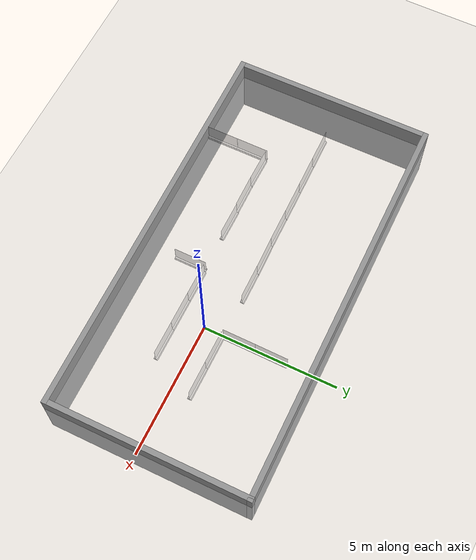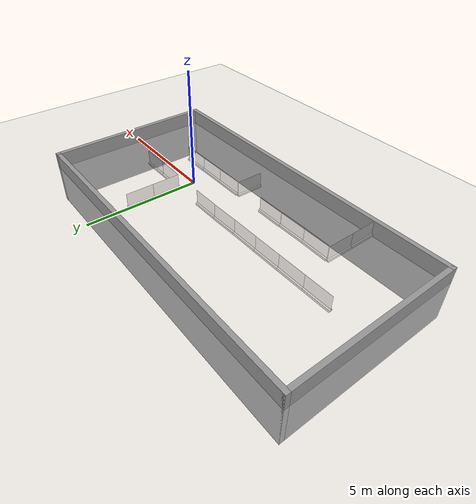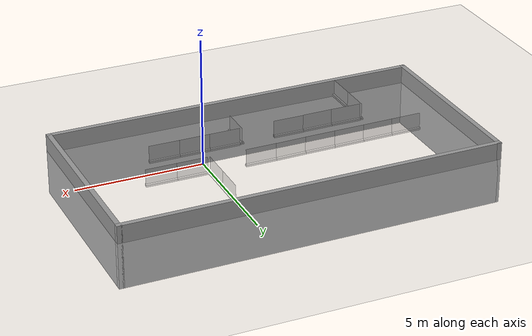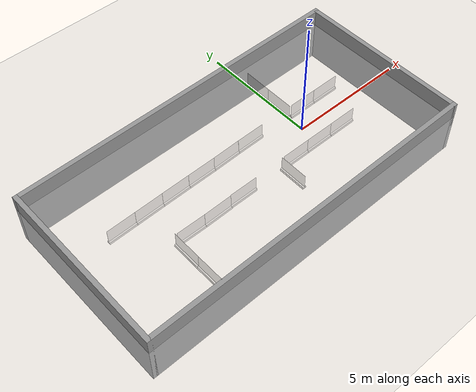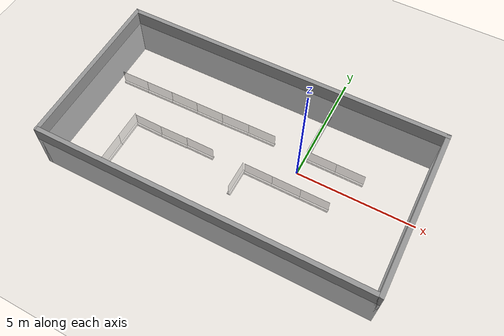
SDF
<sdf version="1.5">
 <world name="default">
  <scene>
   <sky><clouds><speed>12</speed></clouds></sky>
   <ambient>0.4 0.4 0.4 1</ambient>
   <background>0.7 0.7 0.7 1</background>
   <shadows>1</shadows>
  </scene>
  <light name="sun" type="directional">
   <pose>0 0 10 0 -0 0</pose>
   <diffuse>0.8 0.8 0.8 1</diffuse>
   <specular>0.2 0.2 0.2 1</specular>
   <attenuation>
    <range>1000</range>
    <constant>0.9</constant>
    <linear>0.01</linear>
    <quadratic>0.001</quadratic>
   </attenuation>
   <direction>-0.5 0.1 -0.9</direction>
  </light>
  <model name="ground_plane">
   <pose>4 0 0 0 -0 0</pose>
   <static>1</static>
   <link name="link">
    <collision name="collision">
     <geometry><plane><normal>0 0 1</normal><size>100 100</size></plane></geometry>
     <surface><friction><ode><mu>100</mu><mu2>50</mu2></ode></friction></surface>
    </collision>
    <visual name="visual">
     <cast_shadows>0</cast_shadows>
     <geometry><plane><normal>0 0 1</normal><size>100 100</size></plane></geometry>
     <material>
      <script><uri>file://media/materials/scripts/gazebo.material</uri><name>Gazebo/Grey</name></script>
     </material>
    </visual>
    <velocity_decay><linear>0</linear><angular>0</angular></velocity_decay>
   </link>
  </model>
  <physics name="default_physics" default="0" type="ode">
   <max_step_size>0.001</max_step_size>
   <real_time_factor>1</real_time_factor>
   <real_time_update_rate>1000</real_time_update_rate>
   <gravity>0 0 -9.8</gravity>
   <magnetic_field>5.5645e-06 2.28758e-05 -4.23884e-05</magnetic_field>
  </physics>
  <scene><ambient>0.4 0.4 0.4 1</ambient><background>0.7 0.7 0.7 1</background><shadows>1</shadows></scene>
  <spherical_coordinates>
   <surface_model>EARTH_WGS84</surface_model>
   <latitude_deg>0</latitude_deg>
   <longitude_deg>0</longitude_deg>
   <elevation>0</elevation>
   <heading_deg>0</heading_deg>
  </spherical_coordinates>
  <model name="fleming_wall_ghost_ghost">
   <static>1</static>
   <link name="wall">
    <pose>0 0 0.0254 0 -0 0</pose>
    <collision name="base_collision"><geometry><box><size>1.2192 0.1524 0.0508</size></box></geometry></collision>
    <visual name="base_visual">
     <transparency>0.5</transparency>
     <geometry><box><size>1.2192 0.1524 0.0508</size></box></geometry>
     <material>
      <script>
       <uri>model://fleming_wall_ghost/materials/scripts</uri>
       <uri>model://fleming_wall_ghost/materials/textures</uri>
       <name>FlemingWall/Image</name>
      </script>
     </material>
    </visual>
    <visual name="front_strut_visual">
     <transparency>0.5</transparency>
     <pose>0 0.028575 0.0508 0 -0 0</pose>
     <geometry><box><size>1.2192 0.0508 0.0508</size></box></geometry>
     <material>
      <script>
       <uri>model://fleming_wall_ghost/materials/scripts</uri>
       <uri>model://fleming_wall_ghost/materials/textures</uri>
       <name>FlemingWall/Image</name>
      </script>
     </material>
    </visual>
    <visual name="back_strut_visual">
     <transparency>0.5</transparency>
     <pose>0 -0.028575 0.0508 0 -0 0</pose>
     <geometry><box><size>1.2192 0.0508 0.0508</size></box></geometry>
     <material>
      <script>
       <uri>model://fleming_wall_ghost/materials/scripts</uri>
       <uri>model://fleming_wall_ghost/materials/textures</uri>
       <name>FlemingWall/Image</name>
      </script>
     </material>
    </visual>
    <visual name="panel_visual">
     <transparency>0.5</transparency>
     <pose>0 0 0.3556 0 -0 0</pose>
     <geometry><box><size>1.2192 0.003175 0.6096</size></box></geometry>
     <material>
      <script>
       <uri>model://fleming_wall_ghost/materials/scripts</uri>
       <uri>model://fleming_wall_ghost/materials/textures</uri>
       <name>FlemingWall/Image</name>
      </script>
     </material>
    </visual>
    <velocity_decay><linear>0</linear><angular>0</angular></velocity_decay>
   </link>
   <pose>-6.8838 0.677935 0 0 -0 0.01608</pose>
  </model>
  <model name="fleming_wall_ghost_ghost_0">
   <static>1</static>
   <link name="wall">
    <pose>0 0 0.0254 0 -0 0</pose>
    <collision name="base_collision"><geometry><box><size>1.2192 0.1524 0.0508</size></box></geometry></collision>
    <visual name="base_visual">
     <transparency>0.5</transparency>
     <geometry><box><size>1.2192 0.1524 0.0508</size></box></geometry>
     <material>
      <script>
       <uri>model://fleming_wall_ghost/materials/scripts</uri>
       <uri>model://fleming_wall_ghost/materials/textures</uri>
       <name>FlemingWall/Image</name>
      </script>
     </material>
    </visual>
    <visual name="front_strut_visual">
     <transparency>0.5</transparency>
     <pose>0 0.028575 0.0508 0 -0 0</pose>
     <geometry><box><size>1.2192 0.0508 0.0508</size></box></geometry>
     <material>
      <script>
       <uri>model://fleming_wall_ghost/materials/scripts</uri>
       <uri>model://fleming_wall_ghost/materials/textures</uri>
       <name>FlemingWall/Image</name>
      </script>
     </material>
    </visual>
    <visual name="back_strut_visual">
     <transparency>0.5</transparency>
     <pose>0 -0.028575 0.0508 0 -0 0</pose>
     <geometry><box><size>1.2192 0.0508 0.0508</size></box></geometry>
     <material>
      <script>
       <uri>model://fleming_wall_ghost/materials/scripts</uri>
       <uri>model://fleming_wall_ghost/materials/textures</uri>
       <name>FlemingWall/Image</name>
      </script>
     </material>
    </visual>
    <visual name="panel_visual">
     <transparency>0.5</transparency>
     <pose>0 0 0.3556 0 -0 0</pose>
     <geometry><box><size>1.2192 0.003175 0.6096</size></box></geometry>
     <material>
      <script>
       <uri>model://fleming_wall_ghost/materials/scripts</uri>
       <uri>model://fleming_wall_ghost/materials/textures</uri>
       <name>FlemingWall/Image</name>
      </script>
     </material>
    </visual>
    <velocity_decay><linear>0</linear><angular>0</angular></velocity_decay>
   </link>
   <pose>-8.10289 0.659468 0 0 0 -3.12515</pose>
  </model>
  <model name="fleming_wall_ghost_ghost_1">
   <static>1</static>
   <link name="wall">
    <pose>0 0 0.0254 0 -0 0</pose>
    <collision name="base_collision"><geometry><box><size>1.2192 0.1524 0.0508</size></box></geometry></collision>
    <visual name="base_visual">
     <transparency>0.5</transparency>
     <geometry><box><size>1.2192 0.1524 0.0508</size></box></geometry>
     <material>
      <script>
       <uri>model://fleming_wall_ghost/materials/scripts</uri>
       <uri>model://fleming_wall_ghost/materials/textures</uri>
       <name>FlemingWall/Image</name>
      </script>
     </material>
    </visual>
    <visual name="front_strut_visual">
     <transparency>0.5</transparency>
     <pose>0 0.028575 0.0508 0 -0 0</pose>
     <geometry><box><size>1.2192 0.0508 0.0508</size></box></geometry>
     <material>
      <script>
       <uri>model://fleming_wall_ghost/materials/scripts</uri>
       <uri>model://fleming_wall_ghost/materials/textures</uri>
       <name>FlemingWall/Image</name>
      </script>
     </material>
    </visual>
    <visual name="back_strut_visual">
     <transparency>0.5</transparency>
     <pose>0 -0.028575 0.0508 0 -0 0</pose>
     <geometry><box><size>1.2192 0.0508 0.0508</size></box></geometry>
     <material>
      <script>
       <uri>model://fleming_wall_ghost/materials/scripts</uri>
       <uri>model://fleming_wall_ghost/materials/textures</uri>
       <name>FlemingWall/Image</name>
      </script>
     </material>
    </visual>
    <visual name="panel_visual">
     <transparency>0.5</transparency>
     <pose>0 0 0.3556 0 -0 0</pose>
     <geometry><box><size>1.2192 0.003175 0.6096</size></box></geometry>
     <material>
      <script>
       <uri>model://fleming_wall_ghost/materials/scripts</uri>
       <uri>model://fleming_wall_ghost/materials/textures</uri>
       <name>FlemingWall/Image</name>
      </script>
     </material>
    </visual>
    <velocity_decay><linear>0</linear><angular>0</angular></velocity_decay>
   </link>
   <pose>0.717697 0.729802 0 0 -0 0</pose>
  </model>
  <model name="fleming_wall_ghost_ghost_2">
   <static>1</static>
   <link name="wall">
    <pose>0 0 0.0254 0 -0 0</pose>
    <collision name="base_collision"><geometry><box><size>1.2192 0.1524 0.0508</size></box></geometry></collision>
    <visual name="base_visual">
     <transparency>0.5</transparency>
     <geometry><box><size>1.2192 0.1524 0.0508</size></box></geometry>
     <material>
      <script>
       <uri>model://fleming_wall_ghost/materials/scripts</uri>
       <uri>model://fleming_wall_ghost/materials/textures</uri>
       <name>FlemingWall/Image</name>
      </script>
     </material>
    </visual>
    <visual name="front_strut_visual">
     <transparency>0.5</transparency>
     <pose>0 0.028575 0.0508 0 -0 0</pose>
     <geometry><box><size>1.2192 0.0508 0.0508</size></box></geometry>
     <material>
      <script>
       <uri>model://fleming_wall_ghost/materials/scripts</uri>
       <uri>model://fleming_wall_ghost/materials/textures</uri>
       <name>FlemingWall/Image</name>
      </script>
     </material>
    </visual>
    <visual name="back_strut_visual">
     <transparency>0.5</transparency>
     <pose>0 -0.028575 0.0508 0 -0 0</pose>
     <geometry><box><size>1.2192 0.0508 0.0508</size></box></geometry>
     <material>
      <script>
       <uri>model://fleming_wall_ghost/materials/scripts</uri>
       <uri>model://fleming_wall_ghost/materials/textures</uri>
       <name>FlemingWall/Image</name>
      </script>
     </material>
    </visual>
    <visual name="panel_visual">
     <transparency>0.5</transparency>
     <pose>0 0 0.3556 0 -0 0</pose>
     <geometry><box><size>1.2192 0.003175 0.6096</size></box></geometry>
     <material>
      <script>
       <uri>model://fleming_wall_ghost/materials/scripts</uri>
       <uri>model://fleming_wall_ghost/materials/textures</uri>
       <name>FlemingWall/Image</name>
      </script>
     </material>
    </visual>
    <velocity_decay><linear>0</linear><angular>0</angular></velocity_decay>
   </link>
   <pose>1.93541 0.730191 0 0 -0 0</pose>
  </model>
  <model name="fleming_wall_ghost_ghost_3">
   <static>1</static>
   <link name="wall">
    <pose>0 0 0.0254 0 -0 0</pose>
    <collision name="base_collision"><geometry><box><size>1.2192 0.1524 0.0508</size></box></geometry></collision>
    <visual name="base_visual">
     <transparency>0.5</transparency>
     <geometry><box><size>1.2192 0.1524 0.0508</size></box></geometry>
     <material>
      <script>
       <uri>model://fleming_wall_ghost/materials/scripts</uri>
       <uri>model://fleming_wall_ghost/materials/textures</uri>
       <name>FlemingWall/Image</name>
      </script>
     </material>
    </visual>
    <visual name="front_strut_visual">
     <transparency>0.5</transparency>
     <pose>0 0.028575 0.0508 0 -0 0</pose>
     <geometry><box><size>1.2192 0.0508 0.0508</size></box></geometry>
     <material>
      <script>
       <uri>model://fleming_wall_ghost/materials/scripts</uri>
       <uri>model://fleming_wall_ghost/materials/textures</uri>
       <name>FlemingWall/Image</name>
      </script>
     </material>
    </visual>
    <visual name="back_strut_visual">
     <transparency>0.5</transparency>
     <pose>0 -0.028575 0.0508 0 -0 0</pose>
     <geometry><box><size>1.2192 0.0508 0.0508</size></box></geometry>
     <material>
      <script>
       <uri>model://fleming_wall_ghost/materials/scripts</uri>
       <uri>model://fleming_wall_ghost/materials/textures</uri>
       <name>FlemingWall/Image</name>
      </script>
     </material>
    </visual>
    <visual name="panel_visual">
     <transparency>0.5</transparency>
     <pose>0 0 0.3556 0 -0 0</pose>
     <geometry><box><size>1.2192 0.003175 0.6096</size></box></geometry>
     <material>
      <script>
       <uri>model://fleming_wall_ghost/materials/scripts</uri>
       <uri>model://fleming_wall_ghost/materials/textures</uri>
       <name>FlemingWall/Image</name>
      </script>
     </material>
    </visual>
    <velocity_decay><linear>0</linear><angular>0</angular></velocity_decay>
   </link>
   <pose>0.037847 2.56604 -0 0 0 -1.57705</pose>
  </model>
  <model name="fleming_wall_ghost_ghost_4">
   <static>1</static>
   <link name="wall">
    <pose>0 0 0.0254 0 -0 0</pose>
    <collision name="base_collision"><geometry><box><size>1.2192 0.1524 0.0508</size></box></geometry></collision>
    <visual name="base_visual">
     <transparency>0.5</transparency>
     <geometry><box><size>1.2192 0.1524 0.0508</size></box></geometry>
     <material>
      <script>
       <uri>model://fleming_wall_ghost/materials/scripts</uri>
       <uri>model://fleming_wall_ghost/materials/textures</uri>
       <name>FlemingWall/Image</name>
      </script>
     </material>
    </visual>
    <visual name="front_strut_visual">
     <transparency>0.5</transparency>
     <pose>0 0.028575 0.0508 0 -0 0</pose>
     <geometry><box><size>1.2192 0.0508 0.0508</size></box></geometry>
     <material>
      <script>
       <uri>model://fleming_wall_ghost/materials/scripts</uri>
       <uri>model://fleming_wall_ghost/materials/textures</uri>
       <name>FlemingWall/Image</name>
      </script>
     </material>
    </visual>
    <visual name="back_strut_visual">
     <transparency>0.5</transparency>
     <pose>0 -0.028575 0.0508 0 -0 0</pose>
     <geometry><box><size>1.2192 0.0508 0.0508</size></box></geometry>
     <material>
      <script>
       <uri>model://fleming_wall_ghost/materials/scripts</uri>
       <uri>model://fleming_wall_ghost/materials/textures</uri>
       <name>FlemingWall/Image</name>
      </script>
     </material>
    </visual>
    <visual name="panel_visual">
     <transparency>0.5</transparency>
     <pose>0 0 0.3556 0 -0 0</pose>
     <geometry><box><size>1.2192 0.003175 0.6096</size></box></geometry>
     <material>
      <script>
       <uri>model://fleming_wall_ghost/materials/scripts</uri>
       <uri>model://fleming_wall_ghost/materials/textures</uri>
       <name>FlemingWall/Image</name>
      </script>
     </material>
    </visual>
    <velocity_decay><linear>0</linear><angular>0</angular></velocity_decay>
   </link>
   <pose>-7.01825 -2.79355 -0.002828 0 0 -1.56568</pose>
  </model>
  <model name="fleming_wall_ghost_ghost_5">
   <static>1</static>
   <link name="wall">
    <pose>0 0 0.0254 0 -0 0</pose>
    <collision name="base_collision"><geometry><box><size>1.2192 0.1524 0.0508</size></box></geometry></collision>
    <visual name="base_visual">
     <transparency>0.5</transparency>
     <geometry><box><size>1.2192 0.1524 0.0508</size></box></geometry>
     <material>
      <script>
       <uri>model://fleming_wall_ghost/materials/scripts</uri>
       <uri>model://fleming_wall_ghost/materials/textures</uri>
       <name>FlemingWall/Image</name>
      </script>
     </material>
    </visual>
    <visual name="front_strut_visual">
     <transparency>0.5</transparency>
     <pose>0 0.028575 0.0508 0 -0 0</pose>
     <geometry><box><size>1.2192 0.0508 0.0508</size></box></geometry>
     <material>
      <script>
       <uri>model://fleming_wall_ghost/materials/scripts</uri>
       <uri>model://fleming_wall_ghost/materials/textures</uri>
       <name>FlemingWall/Image</name>
      </script>
     </material>
    </visual>
    <visual name="back_strut_visual">
     <transparency>0.5</transparency>
     <pose>0 -0.028575 0.0508 0 -0 0</pose>
     <geometry><box><size>1.2192 0.0508 0.0508</size></box></geometry>
     <material>
      <script>
       <uri>model://fleming_wall_ghost/materials/scripts</uri>
       <uri>model://fleming_wall_ghost/materials/textures</uri>
       <name>FlemingWall/Image</name>
      </script>
     </material>
    </visual>
    <visual name="panel_visual">
     <transparency>0.5</transparency>
     <pose>0 0 0.3556 0 -0 0</pose>
     <geometry><box><size>1.2192 0.003175 0.6096</size></box></geometry>
     <material>
      <script>
       <uri>model://fleming_wall_ghost/materials/scripts</uri>
       <uri>model://fleming_wall_ghost/materials/textures</uri>
       <name>FlemingWall/Image</name>
      </script>
     </material>
    </visual>
    <velocity_decay><linear>0</linear><angular>0</angular></velocity_decay>
   </link>
   <pose>1.17166 -0.955942 0 0 -0 0</pose>
  </model>
  <model name="fleming_wall_ghost_ghost_7">
   <static>1</static>
   <link name="wall">
    <pose>0 0 0.0254 0 -0 0</pose>
    <collision name="base_collision"><geometry><box><size>1.2192 0.1524 0.0508</size></box></geometry></collision>
    <visual name="base_visual">
     <transparency>0.5</transparency>
     <geometry><box><size>1.2192 0.1524 0.0508</size></box></geometry>
     <material>
      <script>
       <uri>model://fleming_wall_ghost/materials/scripts</uri>
       <uri>model://fleming_wall_ghost/materials/textures</uri>
       <name>FlemingWall/Image</name>
      </script>
     </material>
    </visual>
    <visual name="front_strut_visual">
     <transparency>0.5</transparency>
     <pose>0 0.028575 0.0508 0 -0 0</pose>
     <geometry><box><size>1.2192 0.0508 0.0508</size></box></geometry>
     <material>
      <script>
       <uri>model://fleming_wall_ghost/materials/scripts</uri>
       <uri>model://fleming_wall_ghost/materials/textures</uri>
       <name>FlemingWall/Image</name>
      </script>
     </material>
    </visual>
    <visual name="back_strut_visual">
     <transparency>0.5</transparency>
     <pose>0 -0.028575 0.0508 0 -0 0</pose>
     <geometry><box><size>1.2192 0.0508 0.0508</size></box></geometry>
     <material>
      <script>
       <uri>model://fleming_wall_ghost/materials/scripts</uri>
       <uri>model://fleming_wall_ghost/materials/textures</uri>
       <name>FlemingWall/Image</name>
      </script>
     </material>
    </visual>
    <visual name="panel_visual">
     <transparency>0.5</transparency>
     <pose>0 0 0.3556 0 -0 0</pose>
     <geometry><box><size>1.2192 0.003175 0.6096</size></box></geometry>
     <material>
      <script>
       <uri>model://fleming_wall_ghost/materials/scripts</uri>
       <uri>model://fleming_wall_ghost/materials/textures</uri>
       <name>FlemingWall/Image</name>
      </script>
     </material>
    </visual>
    <velocity_decay><linear>0</linear><angular>0</angular></velocity_decay>
   </link>
   <pose>-3.91762 -0.987768 0 0 -0 3.14036</pose>
  </model>
  <model name="fleming_wall_ghost_ghost_8">
   <static>1</static>
   <link name="wall">
    <pose>0 0 0.0254 0 -0 0</pose>
    <collision name="base_collision"><geometry><box><size>1.2192 0.1524 0.0508</size></box></geometry></collision>
    <visual name="base_visual">
     <transparency>0.5</transparency>
     <geometry><box><size>1.2192 0.1524 0.0508</size></box></geometry>
     <material>
      <script>
       <uri>model://fleming_wall_ghost/materials/scripts</uri>
       <uri>model://fleming_wall_ghost/materials/textures</uri>
       <name>FlemingWall/Image</name>
      </script>
     </material>
    </visual>
    <visual name="front_strut_visual">
     <transparency>0.5</transparency>
     <pose>0 0.028575 0.0508 0 -0 0</pose>
     <geometry><box><size>1.2192 0.0508 0.0508</size></box></geometry>
     <material>
      <script>
       <uri>model://fleming_wall_ghost/materials/scripts</uri>
       <uri>model://fleming_wall_ghost/materials/textures</uri>
       <name>FlemingWall/Image</name>
      </script>
     </material>
    </visual>
    <visual name="back_strut_visual">
     <transparency>0.5</transparency>
     <pose>0 -0.028575 0.0508 0 -0 0</pose>
     <geometry><box><size>1.2192 0.0508 0.0508</size></box></geometry>
     <material>
      <script>
       <uri>model://fleming_wall_ghost/materials/scripts</uri>
       <uri>model://fleming_wall_ghost/materials/textures</uri>
       <name>FlemingWall/Image</name>
      </script>
     </material>
    </visual>
    <visual name="panel_visual">
     <transparency>0.5</transparency>
     <pose>0 0 0.3556 0 -0 0</pose>
     <geometry><box><size>1.2192 0.003175 0.6096</size></box></geometry>
     <material>
      <script>
       <uri>model://fleming_wall_ghost/materials/scripts</uri>
       <uri>model://fleming_wall_ghost/materials/textures</uri>
       <name>FlemingWall/Image</name>
      </script>
     </material>
    </visual>
    <velocity_decay><linear>0</linear><angular>0</angular></velocity_decay>
   </link>
   <pose>-6.35786 -1.01351 -0 0 -0 3.13055</pose>
  </model>
  <model name="building_template_model">
   <static>1</static>
   <link name="__default__"><velocity_decay><linear>0</linear><angular>0</angular></velocity_decay></link>
  </model>
  <model name="Fleming_big">
   <pose>-2.70751 4.05396 -1.82922 0 0 -3.13501</pose>
   <link name="Wall_0">
    <collision name="Wall_0_Collision">
     <geometry><box><size>15.2 0.2 2.5</size></box></geometry>
     <pose>0 0 1.25 0 -0 0</pose>
    </collision>
    <visual name="Wall_0_Visual">
     <pose>0 0 1.25 0 -0 0</pose>
     <geometry><box><size>15.2 0.2 2.5</size></box></geometry>
     <material>
      <script><uri>file://media/materials/scripts/gazebo.material</uri><name>Gazebo/Grey</name></script>
     </material>
    </visual>
    <velocity_decay><linear>0</linear><angular>0</angular></velocity_decay>
   </link>
   <link name="Wall_2">
    <collision name="Wall_2_Collision">
     <geometry><box><size>7.7 0.2 2.5</size></box></geometry>
     <pose>0 0 1.25 0 -0 0</pose>
    </collision>
    <visual name="Wall_2_Visual">
     <pose>0 0 1.25 0 -0 0</pose>
     <geometry><box><size>7.7 0.2 2.5</size></box></geometry>
     <material>
      <script><uri>file://media/materials/scripts/gazebo.material</uri><name>Gazebo/Grey</name></script>
     </material>
    </visual>
    <velocity_decay><linear>0</linear><angular>0</angular></velocity_decay>
    <pose>-7.5 3.75 0 0 -0 1.5708</pose>
   </link>
   <link name="Wall_3">
    <collision name="Wall_3_Collision">
     <geometry><box><size>15.2 0.2 2.5</size></box></geometry>
     <pose>0 0 1.25 0 -0 0</pose>
    </collision>
    <visual name="Wall_3_Visual">
     <pose>0 0 1.25 0 -0 0</pose>
     <geometry><box><size>15.2 0.2 2.5</size></box></geometry>
     <material>
      <script><uri>file://media/materials/scripts/gazebo.material</uri><name>Gazebo/Grey</name></script>
     </material>
    </visual>
    <velocity_decay><linear>0</linear><angular>0</angular></velocity_decay>
    <pose>0 7.5 0 0 -0 0</pose>
   </link>
   <link name="Wall_4">
    <collision name="Wall_4_Collision">
     <geometry><box><size>7.7 0.2 2.5</size></box></geometry>
     <pose>0 0 1.25 0 -0 0</pose>
    </collision>
    <visual name="Wall_4_Visual">
     <pose>0 0 1.25 0 -0 0</pose>
     <geometry><box><size>7.7 0.2 2.5</size></box></geometry>
     <material>
      <script><uri>file://media/materials/scripts/gazebo.material</uri><name>Gazebo/Grey</name></script>
     </material>
    </visual>
    <velocity_decay><linear>0</linear><angular>0</angular></velocity_decay>
    <pose>7.5 3.75 0 0 0 -1.5708</pose>
   </link>
   <static>1</static>
  </model>
  <model name="fleming_wall_ghost_ghost_9">
   <static>1</static>
   <link name="wall">
    <pose>0 0 0.0254 0 -0 0</pose>
    <collision name="base_collision"><geometry><box><size>1.2192 0.1524 0.0508</size></box></geometry></collision>
    <visual name="base_visual">
     <transparency>0.5</transparency>
     <geometry><box><size>1.2192 0.1524 0.0508</size></box></geometry>
     <material>
      <script>
       <uri>model://fleming_wall_ghost/materials/scripts</uri>
       <uri>model://fleming_wall_ghost/materials/textures</uri>
       <name>FlemingWall/Image</name>
      </script>
     </material>
    </visual>
    <visual name="front_strut_visual">
     <transparency>0.5</transparency>
     <pose>0 0.028575 0.0508 0 -0 0</pose>
     <geometry><box><size>1.2192 0.0508 0.0508</size></box></geometry>
     <material>
      <script>
       <uri>model://fleming_wall_ghost/materials/scripts</uri>
       <uri>model://fleming_wall_ghost/materials/textures</uri>
       <name>FlemingWall/Image</name>
      </script>
     </material>
    </visual>
    <visual name="back_strut_visual">
     <transparency>0.5</transparency>
     <pose>0 -0.028575 0.0508 0 -0 0</pose>
     <geometry><box><size>1.2192 0.0508 0.0508</size></box></geometry>
     <material>
      <script>
       <uri>model://fleming_wall_ghost/materials/scripts</uri>
       <uri>model://fleming_wall_ghost/materials/textures</uri>
       <name>FlemingWall/Image</name>
      </script>
     </material>
    </visual>
    <visual name="panel_visual">
     <transparency>0.5</transparency>
     <pose>0 0 0.3556 0 -0 0</pose>
     <geometry><box><size>1.2192 0.003175 0.6096</size></box></geometry>
     <material>
      <script>
       <uri>model://fleming_wall_ghost/materials/scripts</uri>
       <uri>model://fleming_wall_ghost/materials/textures</uri>
       <name>FlemingWall/Image</name>
      </script>
     </material>
    </visual>
    <velocity_decay><linear>0</linear><angular>0</angular></velocity_decay>
   </link>
   <pose>-7.02254 -1.57214 -0 0 0 -1.57081</pose>
  </model>
  <model name="fleming_wall_ghost_ghost_11">
   <static>1</static>
   <link name="wall">
    <pose>0 0 0.0254 0 -0 0</pose>
    <collision name="base_collision"><geometry><box><size>1.2192 0.1524 0.0508</size></box></geometry></collision>
    <visual name="base_visual">
     <transparency>0.5</transparency>
     <geometry><box><size>1.2192 0.1524 0.0508</size></box></geometry>
     <material>
      <script>
       <uri>model://fleming_wall_ghost/materials/scripts</uri>
       <uri>model://fleming_wall_ghost/materials/textures</uri>
       <name>FlemingWall/Image</name>
      </script>
     </material>
    </visual>
    <visual name="front_strut_visual">
     <transparency>0.5</transparency>
     <pose>0 0.028575 0.0508 0 -0 0</pose>
     <geometry><box><size>1.2192 0.0508 0.0508</size></box></geometry>
     <material>
      <script>
       <uri>model://fleming_wall_ghost/materials/scripts</uri>
       <uri>model://fleming_wall_ghost/materials/textures</uri>
       <name>FlemingWall/Image</name>
      </script>
     </material>
    </visual>
    <visual name="back_strut_visual">
     <transparency>0.5</transparency>
     <pose>0 -0.028575 0.0508 0 -0 0</pose>
     <geometry><box><size>1.2192 0.0508 0.0508</size></box></geometry>
     <material>
      <script>
       <uri>model://fleming_wall_ghost/materials/scripts</uri>
       <uri>model://fleming_wall_ghost/materials/textures</uri>
       <name>FlemingWall/Image</name>
      </script>
     </material>
    </visual>
    <visual name="panel_visual">
     <transparency>0.5</transparency>
     <pose>0 0 0.3556 0 -0 0</pose>
     <geometry><box><size>1.2192 0.003175 0.6096</size></box></geometry>
     <material>
      <script>
       <uri>model://fleming_wall_ghost/materials/scripts</uri>
       <uri>model://fleming_wall_ghost/materials/textures</uri>
       <name>FlemingWall/Image</name>
      </script>
     </material>
    </visual>
    <velocity_decay><linear>0</linear><angular>0</angular></velocity_decay>
   </link>
   <pose>0.03195 1.34904 -0 0 0 -1.57263</pose>
  </model>
  <model name="fleming_wall_ghost_ghost_13">
   <static>1</static>
   <link name="wall">
    <pose>0 0 0.0254 0 -0 0</pose>
    <collision name="base_collision"><geometry><box><size>1.2192 0.1524 0.0508</size></box></geometry></collision>
    <visual name="base_visual">
     <transparency>0.5</transparency>
     <geometry><box><size>1.2192 0.1524 0.0508</size></box></geometry>
     <material>
      <script>
       <uri>model://fleming_wall_ghost/materials/scripts</uri>
       <uri>model://fleming_wall_ghost/materials/textures</uri>
       <name>FlemingWall/Image</name>
      </script>
     </material>
    </visual>
    <visual name="front_strut_visual">
     <transparency>0.5</transparency>
     <pose>0 0.028575 0.0508 0 -0 0</pose>
     <geometry><box><size>1.2192 0.0508 0.0508</size></box></geometry>
     <material>
      <script>
       <uri>model://fleming_wall_ghost/materials/scripts</uri>
       <uri>model://fleming_wall_ghost/materials/textures</uri>
       <name>FlemingWall/Image</name>
      </script>
     </material>
    </visual>
    <visual name="back_strut_visual">
     <transparency>0.5</transparency>
     <pose>0 -0.028575 0.0508 0 -0 0</pose>
     <geometry><box><size>1.2192 0.0508 0.0508</size></box></geometry>
     <material>
      <script>
       <uri>model://fleming_wall_ghost/materials/scripts</uri>
       <uri>model://fleming_wall_ghost/materials/textures</uri>
       <name>FlemingWall/Image</name>
      </script>
     </material>
    </visual>
    <visual name="panel_visual">
     <transparency>0.5</transparency>
     <pose>0 0 0.3556 0 -0 0</pose>
     <geometry><box><size>1.2192 0.003175 0.6096</size></box></geometry>
     <material>
      <script>
       <uri>model://fleming_wall_ghost/materials/scripts</uri>
       <uri>model://fleming_wall_ghost/materials/textures</uri>
       <name>FlemingWall/Image</name>
      </script>
     </material>
    </visual>
    <velocity_decay><linear>0</linear><angular>0</angular></velocity_decay>
   </link>
   <pose>-5.13664 -1.0124 0 0 -0 0.013271</pose>
  </model>
  <model name="fleming_wall_ghost_ghost_14">
   <static>1</static>
   <link name="wall">
    <pose>0 0 0.0254 0 -0 0</pose>
    <collision name="base_collision"><geometry><box><size>1.2192 0.1524 0.0508</size></box></geometry></collision>
    <visual name="base_visual">
     <transparency>0.5</transparency>
     <geometry><box><size>1.2192 0.1524 0.0508</size></box></geometry>
     <material>
      <script>
       <uri>model://fleming_wall_ghost/materials/scripts</uri>
       <uri>model://fleming_wall_ghost/materials/textures</uri>
       <name>FlemingWall/Image</name>
      </script>
     </material>
    </visual>
    <visual name="front_strut_visual">
     <transparency>0.5</transparency>
     <pose>0 0.028575 0.0508 0 -0 0</pose>
     <geometry><box><size>1.2192 0.0508 0.0508</size></box></geometry>
     <material>
      <script>
       <uri>model://fleming_wall_ghost/materials/scripts</uri>
       <uri>model://fleming_wall_ghost/materials/textures</uri>
       <name>FlemingWall/Image</name>
      </script>
     </material>
    </visual>
    <visual name="back_strut_visual">
     <transparency>0.5</transparency>
     <pose>0 -0.028575 0.0508 0 -0 0</pose>
     <geometry><box><size>1.2192 0.0508 0.0508</size></box></geometry>
     <material>
      <script>
       <uri>model://fleming_wall_ghost/materials/scripts</uri>
       <uri>model://fleming_wall_ghost/materials/textures</uri>
       <name>FlemingWall/Image</name>
      </script>
     </material>
    </visual>
    <visual name="panel_visual">
     <transparency>0.5</transparency>
     <pose>0 0 0.3556 0 -0 0</pose>
     <geometry><box><size>1.2192 0.003175 0.6096</size></box></geometry>
     <material>
      <script>
       <uri>model://fleming_wall_ghost/materials/scripts</uri>
       <uri>model://fleming_wall_ghost/materials/textures</uri>
       <name>FlemingWall/Image</name>
      </script>
     </material>
    </visual>
    <velocity_decay><linear>0</linear><angular>0</angular></velocity_decay>
   </link>
   <pose>-1.96246 -1.53513 0 0 0 -1.5731</pose>
  </model>
  <model name="fleming_wall_ghost_ghost_15">
   <static>1</static>
   <link name="wall">
    <pose>0 0 0.0254 0 -0 0</pose>
    <collision name="base_collision"><geometry><box><size>1.2192 0.1524 0.0508</size></box></geometry></collision>
    <visual name="base_visual">
     <transparency>0.5</transparency>
     <geometry><box><size>1.2192 0.1524 0.0508</size></box></geometry>
     <material>
      <script>
       <uri>model://fleming_wall_ghost/materials/scripts</uri>
       <uri>model://fleming_wall_ghost/materials/textures</uri>
       <name>FlemingWall/Image</name>
      </script>
     </material>
    </visual>
    <visual name="front_strut_visual">
     <transparency>0.5</transparency>
     <pose>0 0.028575 0.0508 0 -0 0</pose>
     <geometry><box><size>1.2192 0.0508 0.0508</size></box></geometry>
     <material>
      <script>
       <uri>model://fleming_wall_ghost/materials/scripts</uri>
       <uri>model://fleming_wall_ghost/materials/textures</uri>
       <name>FlemingWall/Image</name>
      </script>
     </material>
    </visual>
    <visual name="back_strut_visual">
     <transparency>0.5</transparency>
     <pose>0 -0.028575 0.0508 0 -0 0</pose>
     <geometry><box><size>1.2192 0.0508 0.0508</size></box></geometry>
     <material>
      <script>
       <uri>model://fleming_wall_ghost/materials/scripts</uri>
       <uri>model://fleming_wall_ghost/materials/textures</uri>
       <name>FlemingWall/Image</name>
      </script>
     </material>
    </visual>
    <visual name="panel_visual">
     <transparency>0.5</transparency>
     <pose>0 0 0.3556 0 -0 0</pose>
     <geometry><box><size>1.2192 0.003175 0.6096</size></box></geometry>
     <material>
      <script>
       <uri>model://fleming_wall_ghost/materials/scripts</uri>
       <uri>model://fleming_wall_ghost/materials/textures</uri>
       <name>FlemingWall/Image</name>
      </script>
     </material>
    </visual>
    <velocity_decay><linear>0</linear><angular>0</angular></velocity_decay>
   </link>
   <pose>-4.44351 0.710267 0 0 0 -3.13117</pose>
  </model>
  <model name="fleming_wall_ghost_ghost_17">
   <static>1</static>
   <link name="wall">
    <pose>0 0 0.0254 0 -0 0</pose>
    <collision name="base_collision"><geometry><box><size>1.2192 0.1524 0.0508</size></box></geometry></collision>
    <visual name="base_visual">
     <transparency>0.5</transparency>
     <geometry><box><size>1.2192 0.1524 0.0508</size></box></geometry>
     <material>
      <script>
       <uri>model://fleming_wall_ghost/materials/scripts</uri>
       <uri>model://fleming_wall_ghost/materials/textures</uri>
       <name>FlemingWall/Image</name>
      </script>
     </material>
    </visual>
    <visual name="front_strut_visual">
     <transparency>0.5</transparency>
     <pose>0 0.028575 0.0508 0 -0 0</pose>
     <geometry><box><size>1.2192 0.0508 0.0508</size></box></geometry>
     <material>
      <script>
       <uri>model://fleming_wall_ghost/materials/scripts</uri>
       <uri>model://fleming_wall_ghost/materials/textures</uri>
       <name>FlemingWall/Image</name>
      </script>
     </material>
    </visual>
    <visual name="back_strut_visual">
     <transparency>0.5</transparency>
     <pose>0 -0.028575 0.0508 0 -0 0</pose>
     <geometry><box><size>1.2192 0.0508 0.0508</size></box></geometry>
     <material>
      <script>
       <uri>model://fleming_wall_ghost/materials/scripts</uri>
       <uri>model://fleming_wall_ghost/materials/textures</uri>
       <name>FlemingWall/Image</name>
      </script>
     </material>
    </visual>
    <visual name="panel_visual">
     <transparency>0.5</transparency>
     <pose>0 0 0.3556 0 -0 0</pose>
     <geometry><box><size>1.2192 0.003175 0.6096</size></box></geometry>
     <material>
      <script>
       <uri>model://fleming_wall_ghost/materials/scripts</uri>
       <uri>model://fleming_wall_ghost/materials/textures</uri>
       <name>FlemingWall/Image</name>
      </script>
     </material>
    </visual>
    <velocity_decay><linear>0</linear><angular>0</angular></velocity_decay>
   </link>
   <pose>-3.22522 0.73366 -0.002365 0 0 -3.11545</pose>
  </model>
  <model name="fleming_wall_ghost_ghost_20">
   <static>1</static>
   <link name="wall">
    <pose>0 0 0.0254 0 -0 0</pose>
    <collision name="base_collision"><geometry><box><size>1.2192 0.1524 0.0508</size></box></geometry></collision>
    <visual name="base_visual">
     <transparency>0.5</transparency>
     <geometry><box><size>1.2192 0.1524 0.0508</size></box></geometry>
     <material>
      <script>
       <uri>model://fleming_wall_ghost/materials/scripts</uri>
       <uri>model://fleming_wall_ghost/materials/textures</uri>
       <name>FlemingWall/Image</name>
      </script>
     </material>
    </visual>
    <visual name="front_strut_visual">
     <transparency>0.5</transparency>
     <pose>0 0.028575 0.0508 0 -0 0</pose>
     <geometry><box><size>1.2192 0.0508 0.0508</size></box></geometry>
     <material>
      <script>
       <uri>model://fleming_wall_ghost/materials/scripts</uri>
       <uri>model://fleming_wall_ghost/materials/textures</uri>
       <name>FlemingWall/Image</name>
      </script>
     </material>
    </visual>
    <visual name="back_strut_visual">
     <transparency>0.5</transparency>
     <pose>0 -0.028575 0.0508 0 -0 0</pose>
     <geometry><box><size>1.2192 0.0508 0.0508</size></box></geometry>
     <material>
      <script>
       <uri>model://fleming_wall_ghost/materials/scripts</uri>
       <uri>model://fleming_wall_ghost/materials/textures</uri>
       <name>FlemingWall/Image</name>
      </script>
     </material>
    </visual>
    <visual name="panel_visual">
     <transparency>0.5</transparency>
     <pose>0 0 0.3556 0 -0 0</pose>
     <geometry><box><size>1.2192 0.003175 0.6096</size></box></geometry>
     <material>
      <script>
       <uri>model://fleming_wall_ghost/materials/scripts</uri>
       <uri>model://fleming_wall_ghost/materials/textures</uri>
       <name>FlemingWall/Image</name>
      </script>
     </material>
    </visual>
    <velocity_decay><linear>0</linear><angular>0</angular></velocity_decay>
   </link>
   <pose>-2.00462 0.755616 0 0.00496 -4.6e-05 0.009078</pose>
  </model>
  <model name="fleming_wall_ghost_ghost_23">
   <static>1</static>
   <link name="wall">
    <pose>0 0 0.0254 0 -0 0</pose>
    <collision name="base_collision"><geometry><box><size>1.2192 0.1524 0.0508</size></box></geometry></collision>
    <visual name="base_visual">
     <transparency>0.5</transparency>
     <geometry><box><size>1.2192 0.1524 0.0508</size></box></geometry>
     <material>
      <script>
       <uri>model://fleming_wall_ghost/materials/scripts</uri>
       <uri>model://fleming_wall_ghost/materials/textures</uri>
       <name>FlemingWall/Image</name>
      </script>
     </material>
    </visual>
    <visual name="front_strut_visual">
     <transparency>0.5</transparency>
     <pose>0 0.028575 0.0508 0 -0 0</pose>
     <geometry><box><size>1.2192 0.0508 0.0508</size></box></geometry>
     <material>
      <script>
       <uri>model://fleming_wall_ghost/materials/scripts</uri>
       <uri>model://fleming_wall_ghost/materials/textures</uri>
       <name>FlemingWall/Image</name>
      </script>
     </material>
    </visual>
    <visual name="back_strut_visual">
     <transparency>0.5</transparency>
     <pose>0 -0.028575 0.0508 0 -0 0</pose>
     <geometry><box><size>1.2192 0.0508 0.0508</size></box></geometry>
     <material>
      <script>
       <uri>model://fleming_wall_ghost/materials/scripts</uri>
       <uri>model://fleming_wall_ghost/materials/textures</uri>
       <name>FlemingWall/Image</name>
      </script>
     </material>
    </visual>
    <visual name="panel_visual">
     <transparency>0.5</transparency>
     <pose>0 0 0.3556 0 -0 0</pose>
     <geometry><box><size>1.2192 0.003175 0.6096</size></box></geometry>
     <material>
      <script>
       <uri>model://fleming_wall_ghost/materials/scripts</uri>
       <uri>model://fleming_wall_ghost/materials/textures</uri>
       <name>FlemingWall/Image</name>
      </script>
     </material>
    </visual>
    <velocity_decay><linear>0</linear><angular>0</angular></velocity_decay>
   </link>
   <pose>-0.045358 -0.957828 0 0 -0 0</pose>
  </model>
  <model name="fleming_wall_ghost_ghost_24">
   <static>1</static>
   <link name="wall">
    <pose>0 0 0.0254 0 -0 0</pose>
    <collision name="base_collision"><geometry><box><size>1.2192 0.1524 0.0508</size></box></geometry></collision>
    <visual name="base_visual">
     <transparency>0.5</transparency>
     <geometry><box><size>1.2192 0.1524 0.0508</size></box></geometry>
     <material>
      <script>
       <uri>model://fleming_wall_ghost/materials/scripts</uri>
       <uri>model://fleming_wall_ghost/materials/textures</uri>
       <name>FlemingWall/Image</name>
      </script>
     </material>
    </visual>
    <visual name="front_strut_visual">
     <transparency>0.5</transparency>
     <pose>0 0.028575 0.0508 0 -0 0</pose>
     <geometry><box><size>1.2192 0.0508 0.0508</size></box></geometry>
     <material>
      <script>
       <uri>model://fleming_wall_ghost/materials/scripts</uri>
       <uri>model://fleming_wall_ghost/materials/textures</uri>
       <name>FlemingWall/Image</name>
      </script>
     </material>
    </visual>
    <visual name="back_strut_visual">
     <transparency>0.5</transparency>
     <pose>0 -0.028575 0.0508 0 -0 0</pose>
     <geometry><box><size>1.2192 0.0508 0.0508</size></box></geometry>
     <material>
      <script>
       <uri>model://fleming_wall_ghost/materials/scripts</uri>
       <uri>model://fleming_wall_ghost/materials/textures</uri>
       <name>FlemingWall/Image</name>
      </script>
     </material>
    </visual>
    <visual name="panel_visual">
     <transparency>0.5</transparency>
     <pose>0 0 0.3556 0 -0 0</pose>
     <geometry><box><size>1.2192 0.003175 0.6096</size></box></geometry>
     <material>
      <script>
       <uri>model://fleming_wall_ghost/materials/scripts</uri>
       <uri>model://fleming_wall_ghost/materials/textures</uri>
       <name>FlemingWall/Image</name>
      </script>
     </material>
    </visual>
    <velocity_decay><linear>0</linear><angular>0</angular></velocity_decay>
   </link>
   <pose>-1.26758 -0.957746 0 0 -0 0</pose>
  </model>
  <model name="fleming_wall_ghost_ghost_18">
   <static>1</static>
   <link name="wall">
    <pose>0 0 0.0254 0 -0 0</pose>
    <collision name="base_collision"><geometry><box><size>1.2192 0.1524 0.0508</size></box></geometry></collision>
    <visual name="base_visual">
     <transparency>0.5</transparency>
     <geometry><box><size>1.2192 0.1524 0.0508</size></box></geometry>
     <material>
      <script>
       <uri>model://fleming_wall_ghost/materials/scripts</uri>
       <uri>model://fleming_wall_ghost/materials/textures</uri>
       <name>FlemingWall/Image</name>
      </script>
     </material>
    </visual>
    <visual name="front_strut_visual">
     <transparency>0.5</transparency>
     <pose>0 0.028575 0.0508 0 -0 0</pose>
     <geometry><box><size>1.2192 0.0508 0.0508</size></box></geometry>
     <material>
      <script>
       <uri>model://fleming_wall_ghost/materials/scripts</uri>
       <uri>model://fleming_wall_ghost/materials/textures</uri>
       <name>FlemingWall/Image</name>
      </script>
     </material>
    </visual>
    <visual name="back_strut_visual">
     <transparency>0.5</transparency>
     <pose>0 -0.028575 0.0508 0 -0 0</pose>
     <geometry><box><size>1.2192 0.0508 0.0508</size></box></geometry>
     <material>
      <script>
       <uri>model://fleming_wall_ghost/materials/scripts</uri>
       <uri>model://fleming_wall_ghost/materials/textures</uri>
       <name>FlemingWall/Image</name>
      </script>
     </material>
    </visual>
    <visual name="panel_visual">
     <transparency>0.5</transparency>
     <pose>0 0 0.3556 0 -0 0</pose>
     <geometry><box><size>1.2192 0.003175 0.6096</size></box></geometry>
     <material>
      <script>
       <uri>model://fleming_wall_ghost/materials/scripts</uri>
       <uri>model://fleming_wall_ghost/materials/textures</uri>
       <name>FlemingWall/Image</name>
      </script>
     </material>
    </visual>
   </link>
   <pose>-5.6651 0.697603 0 0 -0 0.013108</pose>
  </model>
 </world>
</sdf>
